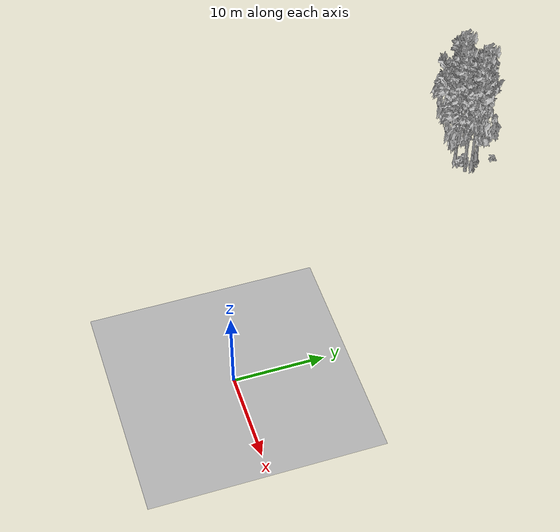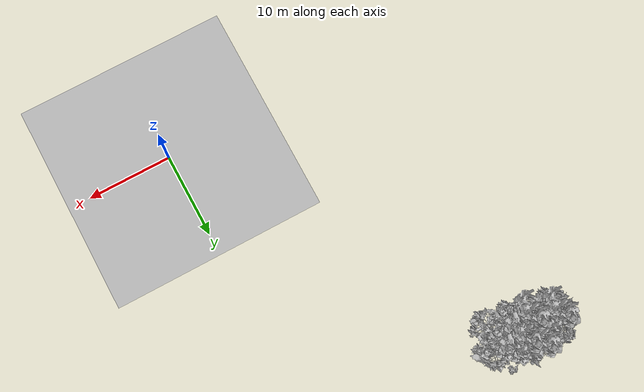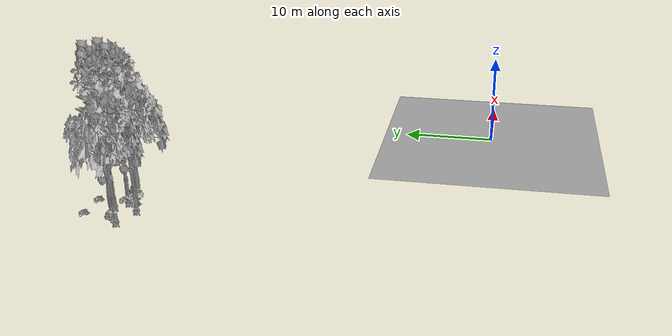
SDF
<sdf version="1.7">
 <world name="default">
  <model name="ground_plane">
   <static>1</static>
   <link name="link">
    <collision name="collision">
     <pose>-50 0 0 0 -0 0</pose>
     <geometry><plane><normal>0 0 1</normal><size>80 80</size></plane></geometry>
     <surface><contact><ode><min_depth>0.01</min_depth><max_vel>0</max_vel></ode></contact></surface>
    </collision>
    <visual name="grass">
     <cast_shadows>0</cast_shadows>
     <geometry>
      <mesh>
       <scale>0.46714285714285714 0.46714285714285714 0.1</scale>
       <uri>file://grass_plane/meshes/grass_plane.dae</uri>
      </mesh>
     </geometry>
    </visual>
   </link>
  </model>
  <model name="Tree 150">
   <static>1</static>
   <pose>-25.73416550779367 35.72224541046337 0 1.57079 -0 0</pose>
   <link name="link">
    <collision name="collision">
     <geometry><mesh><scale>3.5 5 3.5</scale><uri>model://tree_2/meshes/tree_2.obj</uri></mesh></geometry>
    </collision>
    <visual name="visual">
     <geometry><mesh><scale>3.5 5 3.5</scale><uri>model://tree_2/meshes/tree_2.obj</uri></mesh></geometry>
    </visual>
   </link>
  </model>
  <model name="Tree 213">
   <static>1</static>
   <pose>-21.689085061945836 35.9505855969408 0 1.57079 -0 0</pose>
   <link name="link">
    <collision name="collision">
     <geometry><mesh><scale>3.5 5 3.5</scale><uri>model://tree_9/meshes/tree_9.obj</uri></mesh></geometry>
    </collision>
    <visual name="visual">
     <geometry><mesh><scale>3.5 5 3.5</scale><uri>model://tree_9/meshes/tree_9.obj</uri></mesh></geometry>
    </visual>
   </link>
  </model>
  <model name="Tree 411">
   <static>1</static>
   <pose>-22.775814285746154 36.97445210515539 0 1.57079 -0 0</pose>
   <link name="link">
    <collision name="collision">
     <geometry><mesh><scale>3.5 5 3.5</scale><uri>model://tree_9/meshes/tree_9.obj</uri></mesh></geometry>
    </collision>
    <visual name="visual">
     <geometry><mesh><scale>3.5 5 3.5</scale><uri>model://tree_9/meshes/tree_9.obj</uri></mesh></geometry>
    </visual>
   </link>
  </model>
  <model name="Tree 482">
   <static>1</static>
   <pose>-23.205336903243087 34.44347414328176 0 1.57079 -0 0</pose>
   <link name="link">
    <collision name="collision">
     <geometry><mesh><scale>3.5 5 3.5</scale><uri>model://tree_9/meshes/tree_9.obj</uri></mesh></geometry>
    </collision>
    <visual name="visual">
     <geometry><mesh><scale>3.5 5 3.5</scale><uri>model://tree_9/meshes/tree_9.obj</uri></mesh></geometry>
    </visual>
   </link>
  </model>
  <model name="Tree 487">
   <static>1</static>
   <pose>-25.78949433582777 35.442300761344285 0 1.57079 -0 0</pose>
   <link name="link">
    <collision name="collision">
     <geometry><mesh><scale>3.5 5 3.5</scale><uri>model://tree_9/meshes/tree_9.obj</uri></mesh></geometry>
    </collision>
    <visual name="visual">
     <geometry><mesh><scale>3.5 5 3.5</scale><uri>model://tree_9/meshes/tree_9.obj</uri></mesh></geometry>
    </visual>
   </link>
  </model>
  <model name="Tree 513">
   <static>1</static>
   <pose>-21.43527231905189 34.951946523359524 0 1.57079 -0 0</pose>
   <link name="link">
    <collision name="collision">
     <geometry><mesh><scale>3.5 5 3.5</scale><uri>model://tree_2/meshes/tree_2.obj</uri></mesh></geometry>
    </collision>
    <visual name="visual">
     <geometry><mesh><scale>3.5 5 3.5</scale><uri>model://tree_2/meshes/tree_2.obj</uri></mesh></geometry>
    </visual>
   </link>
  </model>
  <model name="Bush 237">
   <static>1</static>
   <pose>-25.19761585158929 39.019757359339806 0 1.57079 -0 0</pose>
   <link name="link">
    <collision name="collision">
     <geometry><mesh><scale>2 2 2</scale><uri>model://bush_2/meshes/bush_2.obj</uri></mesh></geometry>
     <surface><contact><collide_without_contact>false</collide_without_contact></contact></surface>
    </collision>
    <visual name="visual">
     <geometry><mesh><scale>2 2 2</scale><uri>model://bush_2/meshes/bush_2.obj</uri></mesh></geometry>
    </visual>
   </link>
  </model>
  <model name="Bush 316">
   <static>1</static>
   <pose>-22.60267474580313 34.70591895306737 0 1.57079 -0 0</pose>
   <link name="link">
    <collision name="collision">
     <geometry><mesh><scale>2 2 2</scale><uri>model://bush_2/meshes/bush_2.obj</uri></mesh></geometry>
     <surface><contact><collide_without_contact>false</collide_without_contact></contact></surface>
    </collision>
    <visual name="visual">
     <geometry><mesh><scale>2 2 2</scale><uri>model://bush_2/meshes/bush_2.obj</uri></mesh></geometry>
    </visual>
   </link>
  </model>
  <model name="Bush 424">
   <static>1</static>
   <pose>-22.271749063418405 38.861099671627656 0 1.57079 -0 0</pose>
   <link name="link">
    <collision name="collision">
     <geometry><mesh><scale>2 2 2</scale><uri>model://bush_2/meshes/bush_2.obj</uri></mesh></geometry>
     <surface><contact><collide_without_contact>false</collide_without_contact></contact></surface>
    </collision>
    <visual name="visual">
     <geometry><mesh><scale>2 2 2</scale><uri>model://bush_2/meshes/bush_2.obj</uri></mesh></geometry>
    </visual>
   </link>
  </model>
  <model name="Bush 426">
   <static>1</static>
   <pose>-26.407283424551274 35.571346559399515 0 1.57079 -0 0</pose>
   <link name="link">
    <collision name="collision">
     <geometry><mesh><scale>2 2 2</scale><uri>model://bush_0/meshes/bush_0.obj</uri></mesh></geometry>
     <surface><contact><collide_without_contact>false</collide_without_contact></contact></surface>
    </collision>
    <visual name="visual">
     <geometry><mesh><scale>2 2 2</scale><uri>model://bush_0/meshes/bush_0.obj</uri></mesh></geometry>
    </visual>
   </link>
  </model>
  <model name="Bush 493">
   <static>1</static>
   <pose>-22.15929952616523 34.78778197974766 0 1.57079 -0 0</pose>
   <link name="link">
    <collision name="collision">
     <geometry><mesh><scale>2 2 2</scale><uri>model://bush_1/meshes/bush_1.obj</uri></mesh></geometry>
     <surface><contact><collide_without_contact>false</collide_without_contact></contact></surface>
    </collision>
    <visual name="visual">
     <geometry><mesh><scale>2 2 2</scale><uri>model://bush_1/meshes/bush_1.obj</uri></mesh></geometry>
    </visual>
   </link>
  </model>
  <model name="Bush 569">
   <static>1</static>
   <pose>-21.97895462777722 36.25315649996669 0 1.57079 -0 0</pose>
   <link name="link">
    <collision name="collision">
     <geometry><mesh><scale>2 2 2</scale><uri>model://bush_2/meshes/bush_2.obj</uri></mesh></geometry>
     <surface><contact><collide_without_contact>false</collide_without_contact></contact></surface>
    </collision>
    <visual name="visual">
     <geometry><mesh><scale>2 2 2</scale><uri>model://bush_2/meshes/bush_2.obj</uri></mesh></geometry>
    </visual>
   </link>
  </model>
 </world>
</sdf>
